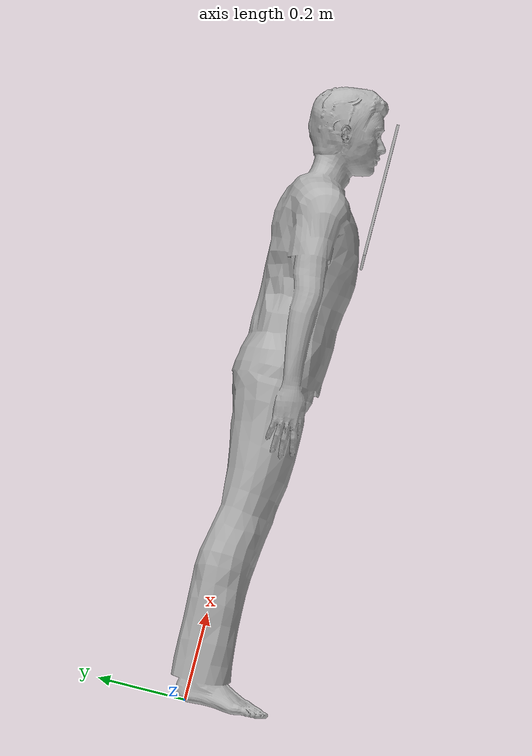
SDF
<?xml version="1.0" ?>
<sdf version="1.5">
  <model name="person3">
    <static>true</static>

    <link name="marker_link">
      <visual name="visual">
	<pose>1.2 -0.14 -0.13 0 0 1.57</pose>
        <geometry>
          <mesh>
            <uri>model://target3/meshes/target3.dae</uri>
          <scale>0.6 0.6 0.6</scale></mesh>
        </geometry>
      </visual>
    </link>

    <link name="link">
      <inertial>
        <pose>0 -0.1 0.95 0 0 0</pose>
        <mass>80.0</mass>
        <inertia>
          <ixx>24.88</ixx>
          <ixy>0</ixy>
          <ixz>0</ixz>
          <iyy>25.73</iyy>
          <iyz>0</iyz>
          <izz>2.48</izz>
        </inertia>
      </inertial>

      <collision name="bottom">
        <pose>0 -0.1 0.01 0 0 0</pose>
        <geometry>
          <box>
            <size>0.5 0.35 0.02</size>
          </box>
        </geometry>
      </collision>

      <collision name="person">
        <pose>0 0 0.02 0 1.57 0</pose>
        <geometry>
          <mesh>
            <uri>model://person_standing/meshes/standing.dae</uri>
            <scale>0.75 0.75 0.75</scale>
          </mesh>
        </geometry>
      </collision>

      <visual name="visual">
        <pose>0 0 0.02 0 1.57 0</pose>
        <geometry>
          <mesh>
            <uri>model://person_standing/meshes/standing.dae</uri>
            <scale>0.75 0.75 0.75</scale>
          </mesh>
        </geometry>
      </visual>
    </link>
  </model>
</sdf>
